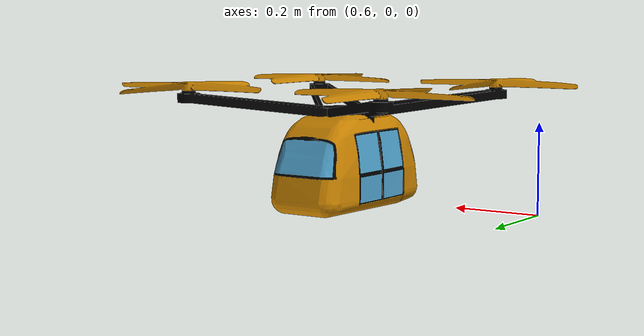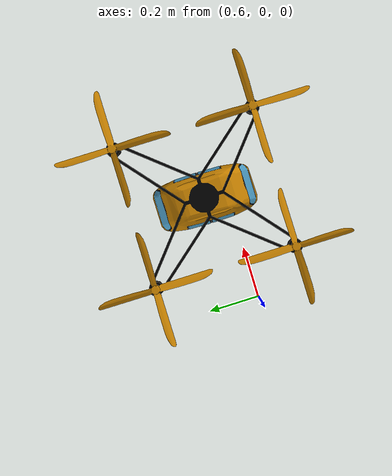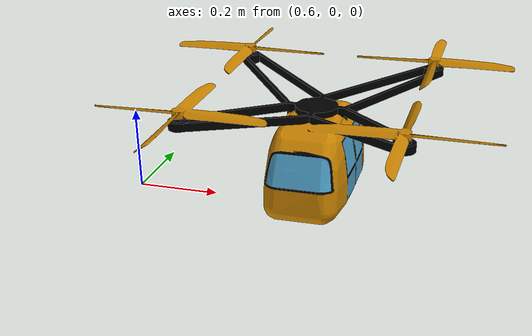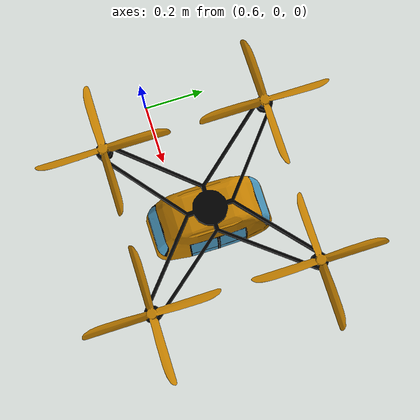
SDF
<?xml version="1.0" ?>
<sdf version="1.5">
  <model name="taxi">
    <static>true</static>
    <link name="link">
      <pose>0 0 0.1 0 0 0</pose>
      <collision name="collision">
        <geometry>
          <mesh>
            <uri>model://taxi/meshes/taxi.dae</uri>
            <scale>0.1 0.1 0.1</scale>
          </mesh>
        </geometry>
      </collision>
      <visual name="visual">
        <geometry>
          <mesh>
            <uri>model://taxi/meshes/taxi.dae</uri>
            <scale>0.1 0.1 0.1</scale>
          </mesh>
        </geometry>
      </visual>
    </link>
  </model>
</sdf>
